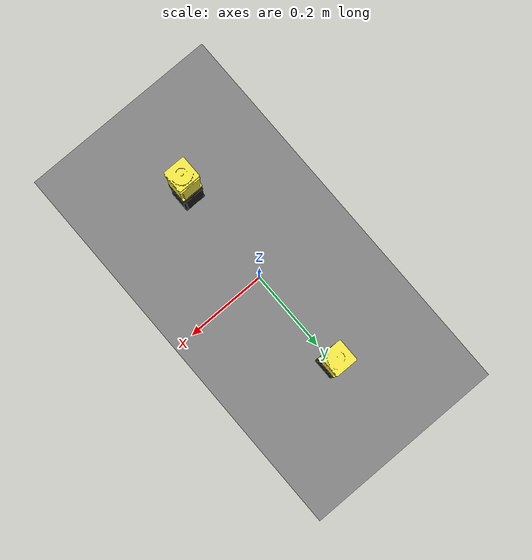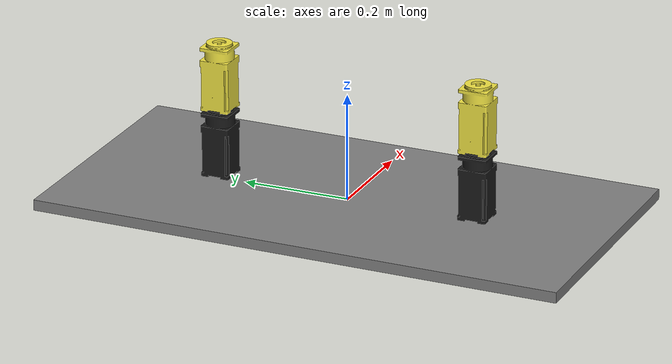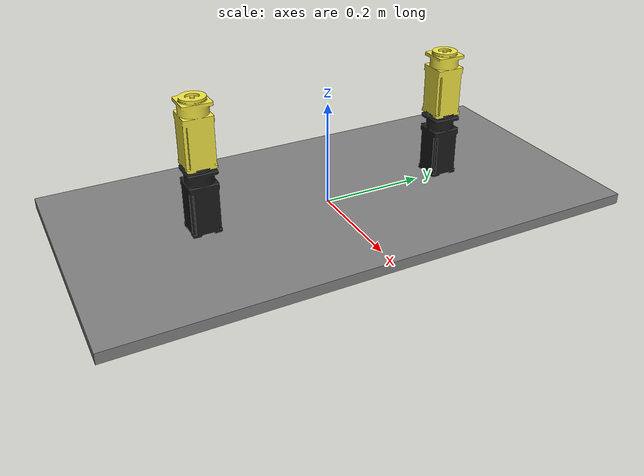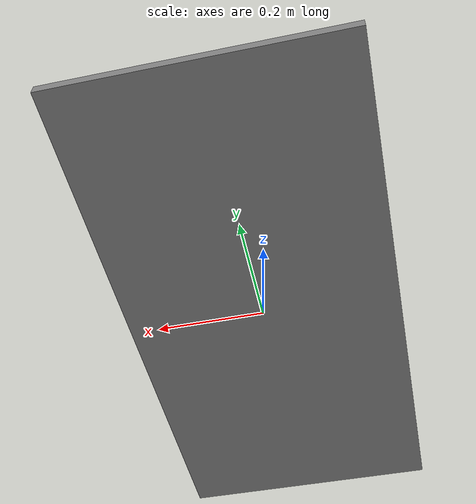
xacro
<?xml version="1.0"?>
<robot name="dual_open_manipulator_p" xmlns:xacro="http://ros.org/wiki/xacro">

  <!-- Base Link -->
  <link name="world"/>

  <link name="base_plate">
    <visual>
      <geometry>
        <box size="0.5 1.0 0.02"/>
      </geometry>
      <material name="grey">
        <color rgba="0.5 0.5 0.5 1.0"/>
      </material>
    </visual>
    <collision>
      <geometry>
        <box size="0.5 1.0 0.02"/>
      </geometry>
    </collision>
  </link>

  <joint name="world_to_base" type="fixed">
    <parent link="world"/>
    <child link="base_plate"/>
    <origin xyz="0 0 0" rpy="0 0 0"/>
  </joint>

  <!-- Macro for OpenManipulator-P Arm -->
  <xacro:macro name="open_manipulator_p" params="prefix parent side">
    <link name="${prefix}_base_link">
      <visual>
        <geometry>
          <mesh filename="package://open_manipulator_p_description/meshes/link1.stl" scale="0.001 0.001 0.001"/>
        </geometry>
        <material name="black">
          <color rgba="0.1 0.1 0.1 1.0"/>
        </material>
      </visual>
      <collision>
        <geometry>
          <mesh filename="package://open_manipulator_p_description/meshes/link1.stl" scale="0.001 0.001 0.001"/>
        </geometry>
      </collision>
      <inertial>
        <mass value="0.5"/>
        <inertia ixx="0.001" ixy="0" ixz="0" iyy="0.001" iyz="0" izz="0.001"/>
      </inertial>
    </link>

    <joint name="${prefix}_base_joint" type="fixed">
      <parent link="${parent}"/>
      <child link="${prefix}_base_link"/>
      <origin xyz="0 ${side * 0.25} 0.01" rpy="0 0 0"/>
    </joint>

    <link name="${prefix}_link1">
      <visual>
        <geometry>
          <mesh filename="package://open_manipulator_p_description/meshes/link1.stl" scale="0.001 0.001 0.001"/>
        </geometry>
      </visual>
      <collision>
        <geometry>
          <mesh filename="package://open_manipulator_p_description/meshes/link1.stl" scale="0.001 0.001 0.001"/>
        </geometry>
      </collision>
      <inertial>
        <mass value="0.4"/>
        <inertia ixx="0.001" ixy="0" ixz="0" iyy="0.001" iyz="0" izz="0.001"/>
      </inertial>
    </link>
    <joint name="${prefix}_joint1" type="revolute">
      <parent link="${prefix}_base_link"/>
      <child link="${prefix}_link1"/>
      <origin xyz="0 0 0.126" rpy="0 0 0"/>
      <axis xyz="0 0 1"/>
      <limit lower="-3.14159" upper="3.14159" effort="100" velocity="1.0"/>
    </joint>

    <link name="${prefix}_link2"/>
    <joint name="${prefix}_joint2" type="revolute">
      <parent link="${prefix}_link1"/>
      <child link="${prefix}_link2"/>
      <origin xyz="0 0 0.033" rpy="0 0 0"/>
      <axis xyz="0 1 0"/>
      <limit lower="-1.5708" upper="1.5708" effort="100" velocity="1.0"/>
    </joint>

    <link name="${prefix}_link3"/>
    <joint name="${prefix}_joint3" type="revolute">
      <parent link="${prefix}_link2"/>
      <child link="${prefix}_link3"/>
      <origin xyz="0 0 0.264" rpy="0 0 0"/>
      <axis xyz="0 1 0"/>
      <limit lower="-1.5708" upper="2.3562" effort="100" velocity="1.0"/>
    </joint>

    <link name="${prefix}_link4"/>
    <joint name="${prefix}_joint4" type="revolute">
      <parent link="${prefix}_link3"/>
      <child link="${prefix}_link4"/>
      <origin xyz="0 0 0.052" rpy="0 0 0"/>
      <axis xyz="0 0 1"/>
      <limit lower="-3.14159" upper="3.14159" effort="100" velocity="1.0"/>
    </joint>

    <link name="${prefix}_link5"/>
    <joint name="${prefix}_joint5" type="revolute">
      <parent link="${prefix}_link4"/>
      <child link="${prefix}_link5"/>
      <origin xyz="0 0 0.211" rpy="0 0 0"/>
      <axis xyz="0 1 0"/>
      <limit lower="-1.5708" upper="1.5708" effort="100" velocity="1.0"/>
    </joint>

    <link name="${prefix}_link6"/>
    <joint name="${prefix}_joint6" type="revolute">
      <parent link="${prefix}_link5"/>
      <child link="${prefix}_link6"/>
      <origin xyz="0 0 0.052" rpy="0 0 0"/>
      <axis xyz="0 0 1"/>
      <limit lower="-3.14159" upper="3.14159" effort="100" velocity="1.0"/>
    </joint>

    <!-- End Effector / Gripper Placeholder -->
    <link name="${prefix}_gripper_link"/>
    <joint name="${prefix}_gripper_joint" type="fixed">
      <parent link="${prefix}_link6"/>
      <child link="${prefix}_gripper_link"/>
      <origin xyz="0 0 0.1" rpy="0 0 0"/>
    </joint>

  </xacro:macro>

  <!-- Instantiate Left Arm (side=1) -->
  <xacro:open_manipulator_p prefix="left" parent="base_plate" side="1"/>

  <!-- Instantiate Right Arm (side=-1) -->
  <xacro:open_manipulator_p prefix="right" parent="base_plate" side="-1"/>

</robot>
